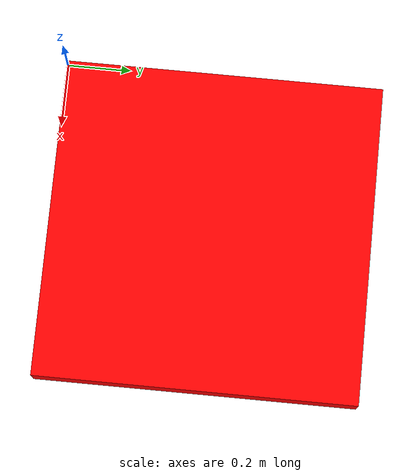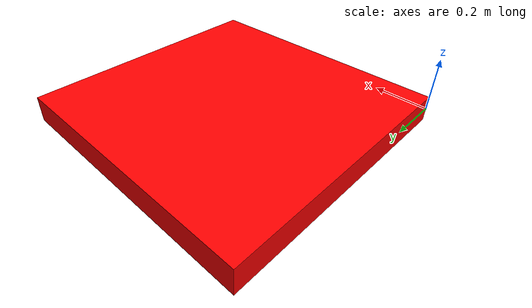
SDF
<?xml version='1.0'?>
<sdf version="1.5">
  <model name="cube">
    <static>true</static>
    <link name="link">
      <pose>0.5 0.5 0 0 0 0</pose>
      <collision name="collision">
        <geometry>
          <box>
            <size>0 0 0</size>
          </box>
        </geometry>
      </collision>
      <visual name="visual">
        <geometry>
          <box>
            <size>1 1 0.1</size>
          </box>
        </geometry>
        <material>
          <ambient>1 0 0 1</ambient>
          <diffuse>1 0 0 1</diffuse>
        </material>
      </visual>
    </link>
  </model>
</sdf>
